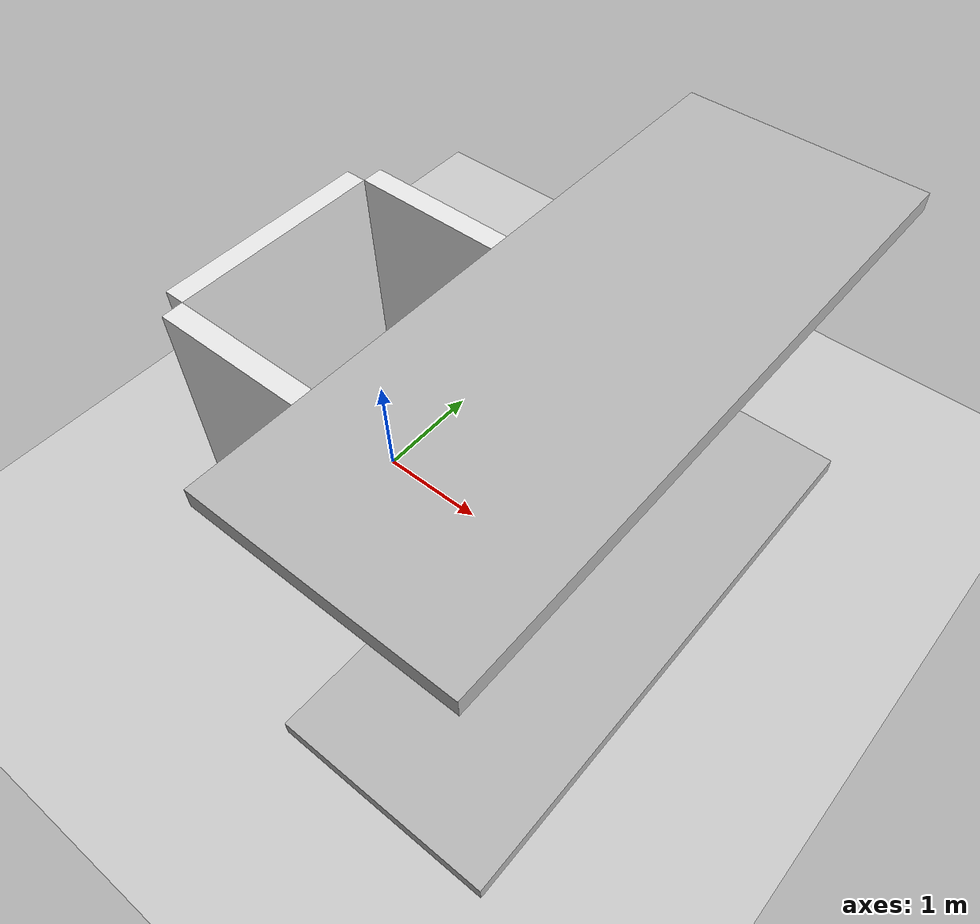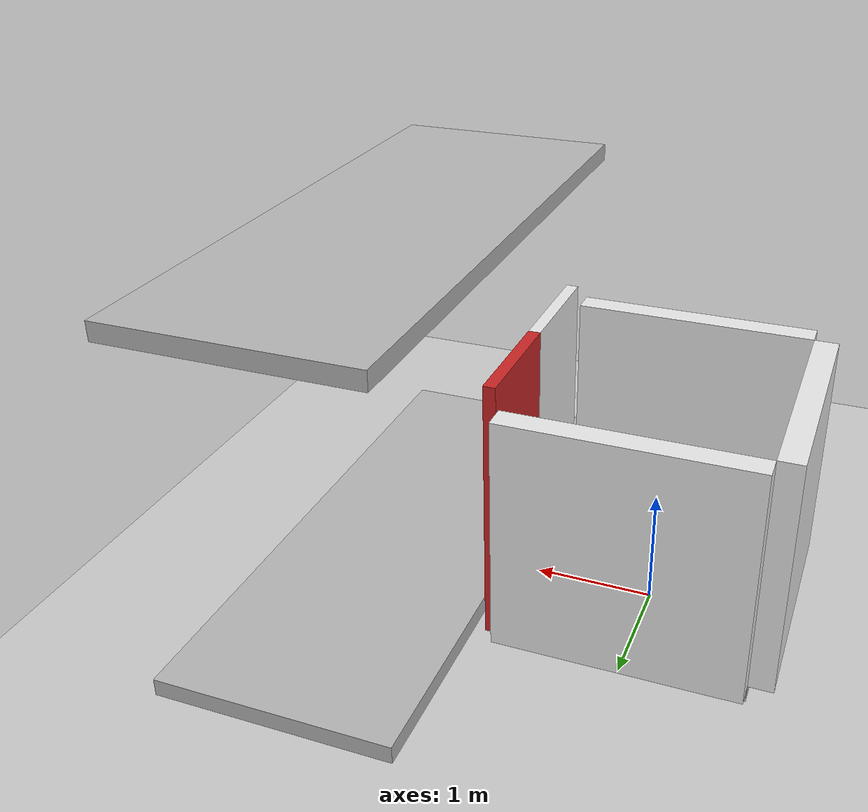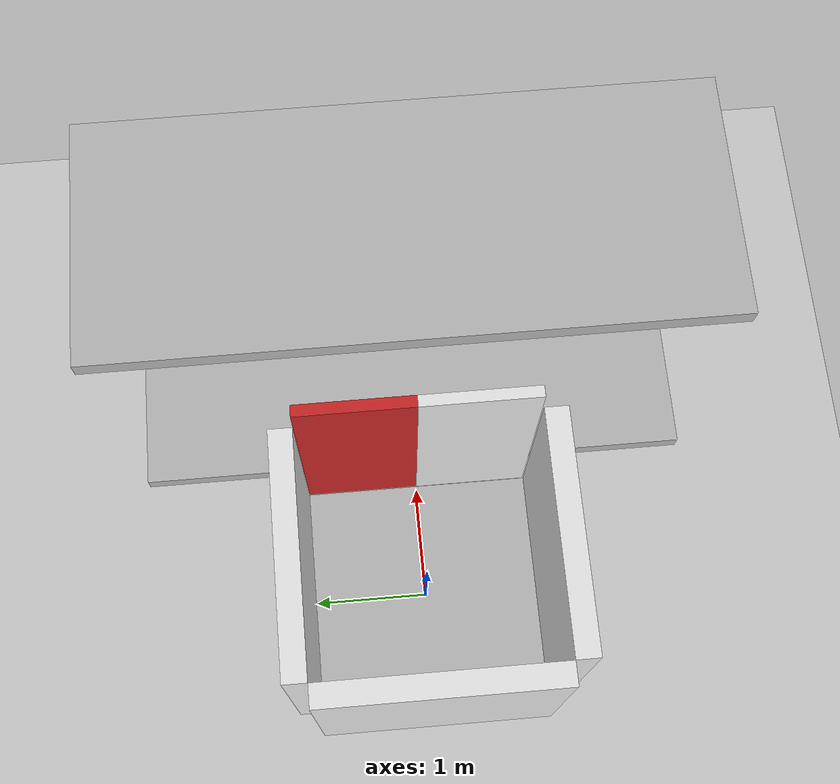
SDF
<?xml version="1.0" ?>
<sdf version="1.5">
  <world name="default">

    <!-- A global light source -->
    <include>
      <uri>model://sun</uri>
    </include>

    <!-- A ground plane -->
    <include>
      <uri>model://ground_plane</uri>
    </include>

    <!-- The elevator car -->
    <model name="elevator">
      <pose>0 0 0.075 0 0 0</pose>
      <link name="link">
        <inertial>
          <mass>800</mass>
        </inertial>

        <collision name="floor_collision">
          <geometry>
            <box>
              <size>2.0 2.0 0.15</size>
            </box>
          </geometry>
        </collision>
        <visual name="floor_visual">
          <geometry>
            <box>
              <size>2.0 2.0 0.15</size>
            </box>
          </geometry>
        </visual>
      </link>

      <link name="leftwall">
        <collision name="wall1_collision">
          <pose>0 -1.1 1.075 0 0 0</pose>
          <geometry>
            <box>
              <size>2 0.2 2</size>
            </box>
          </geometry>
        </collision>
        <visual name="wall1_visual">
          <pose>0 -1.1 1.075 0 0 0</pose>
          <geometry>
            <box>
              <size>2 0.2 2</size>
            </box>
          </geometry>
          <material>
            <script>
              <name>Gazebo/White</name>
            </script>
          </material>
        </visual>
      </link>

      <link name="backwall">
        <collision name="wall1_collision">
          <pose>-1.1 0 1.075 0 0 0</pose>
          <geometry>
            <box>
              <size>0.2 2 2</size>
            </box>
          </geometry>
        </collision>
        <visual name="wall1_visual">
          <pose>-1.1 0 1.075 0 0 0</pose>
          <geometry>
            <box>
              <size>0.2 2 2</size>
            </box>
          </geometry>
          <material>
            <script>
              <name>Gazebo/White</name>
            </script>
          </material>
        </visual>
      </link>

      <link name="rightwall">
        <collision name="wall1_collision">
          <pose>0 1.1 1.075 0 0 0</pose>
          <geometry>
            <box>
              <size>2 0.2 2</size>
            </box>
          </geometry>
        </collision>
        <visual name="wall1_visual">
          <pose>0 1.1 1.075 0 0 0</pose>
          <geometry>
            <box>
              <size>2 0.2 2</size>
            </box>
          </geometry>
          <material>
            <script>
              <name>Gazebo/White</name>
            </script>
          </material>
        </visual>
      </link>

      <link name="rightdoor">
        <collision name="wall1_collision">
          <pose>1.0745 0.50 1.125 0 0 0</pose>
          <geometry>
            <box>
              <size>0.1 1.0 2.25</size>
            </box>
          </geometry>
        </collision>
        <visual name="wall1_visual">
          <pose>1.0745 0.50 1.125 0 0 0</pose>
          <geometry>
            <box>
              <size>0.1 1.0 2.25</size>
            </box>
          </geometry>
          <material>
            <script>
              <name>Gazebo/Red</name>
            </script>
          </material>
        </visual>
      </link>

      <link name="leftdoor">
        <collision name="wall1_collision">
          <pose>1.0745 -0.5 1.125 0 0 0</pose>
          <geometry>
            <box>
              <size>0.1 1.0 2.25</size>
            </box>
          </geometry>
        </collision>
        <visual name="wall1_visual">
          <pose>1.0745 -0.5 1.125 0 0 0</pose>
          <geometry>
            <box>
              <size>0.1 1.0 2.25</size>
            </box>
          </geometry>
          <material>
            <script>
              <name>Gazebo/White</name>
            </script>
          </material>
        </visual>
      </link>

      <joint name="ldoor" type="prismatic">
        <parent>link</parent>
        <child>leftdoor</child>
        <axis>
          <xyz>0 1 0</xyz>
          <limit>
            <lower>-1</lower>
            <upper>0</upper>
            <effort>10</effort>
          </limit>

          <dynamics>
            <damping>2</damping>
          </dynamics>
        </axis>
      </joint>

      <joint name="leftwall_joint" type="fixed">
        <pose>0 0 0 0 0 0</pose>
        <parent>link</parent>
        <child>leftwall</child>
      </joint>

      <joint name="backwall_joint" type="fixed">
        <pose>0 0 0 0 0 0</pose>
        <parent>link</parent>
        <child>backwall</child>
      </joint>

      <joint name="rightwall_joint" type="fixed">
        <pose>0 0 0 0 0 0</pose>
        <parent>link</parent>
        <child>rightwall</child>
      </joint>

      <joint name="rdoor" type="prismatic">
        <parent>link</parent>
        <child>rightdoor</child>
        <axis>
          <xyz>0 1 0</xyz>
          <limit>
            <lower>0</lower>
            <upper>1</upper>
            <effort>10</effort>
          </limit>

          <dynamics>
            <damping>2</damping>
          </dynamics>
        </axis>
      </joint>

      <joint name="lift" type="prismatic">
        <parent>world</parent>
        <child>link</child>
        <axis>
          <xyz>0 0 1</xyz>
          <limit>
            <lower>0</lower>
            <upper>10</upper>
            <effort>100000</effort>
          </limit>

          <dynamics>
            <damping>50</damping>
          </dynamics>
        </axis>
        <physics>
          <ode>
            <implicit_spring_damper>1</implicit_spring_damper>
          </ode>
        </physics>
      </joint>

      <!-- Plugin to control the elevator -->
      <plugin filename="libRosElevator.so" name="elevator_plugin">
        <lift_joint>elevator::lift</lift_joint>
        <door_joint>elevator::rdoor</door_joint>
        <left_door_joint>elevator::ldoor</left_door_joint>
        <floor_height>3.075</floor_height>

        <!-- Time the elevator door will stay open in seconds -->
        <door_wait_time>5</door_wait_time>

        <!-- This topic is used to control the elevator -->
        <topic>~/elevator</topic>
      </plugin>
    </model>

    <model name="floor0">
      <pose>2.25 0 0.075 0 0 0</pose>
      <static>true</static>
      <link name="link">
        <collision name="floor_collision">
          <geometry>
            <box>
              <size>2.0 5.0 0.15</size>
            </box>
          </geometry>
        </collision>
        <visual name="floor_visual">
          <geometry>
            <box>
              <size>2.0 5.0 0.15</size>
            </box>
          </geometry>
        </visual>
      </link>
    </model>

    <model name="floor1">
      <pose>2.25 0 3.075 0 0 0</pose>
      <static>true</static>
      <link name="link">
        <collision name="floor_collision">
          <geometry>
            <box>
              <size>2.0 5.0 0.15</size>
            </box>
          </geometry>
        </collision>
        <visual name="floor_visual">
          <geometry>
            <box>
              <size>2.0 5.0 0.15</size>
            </box>
          </geometry>
        </visual>
      </link>
    </model>

  </world>
</sdf>
